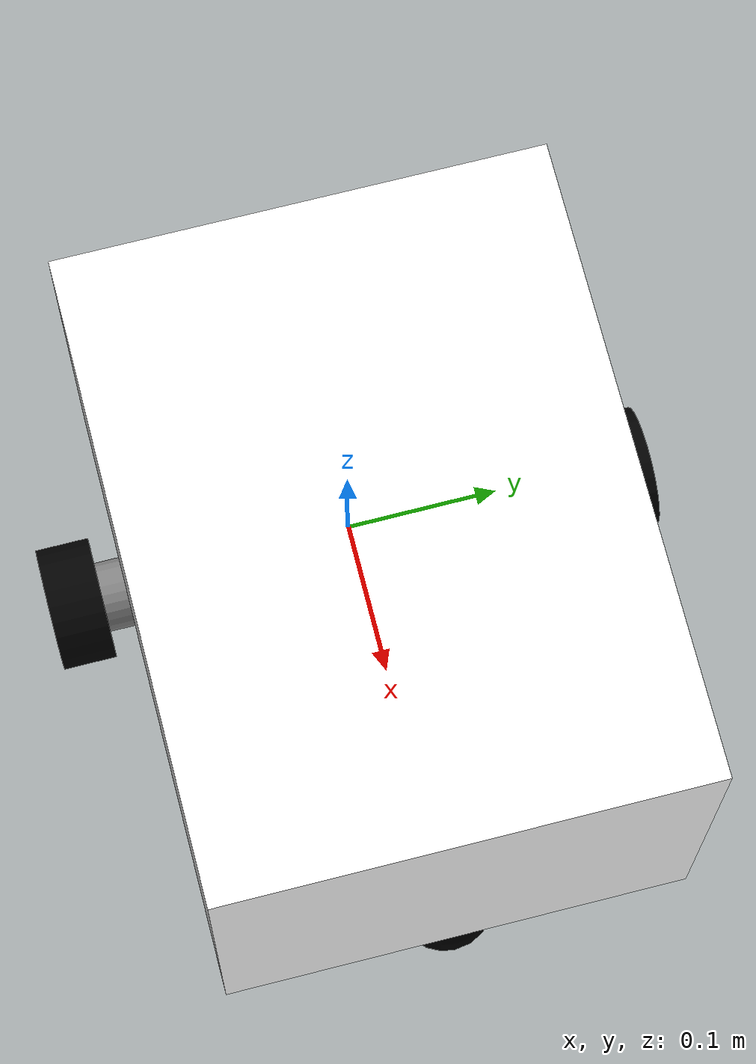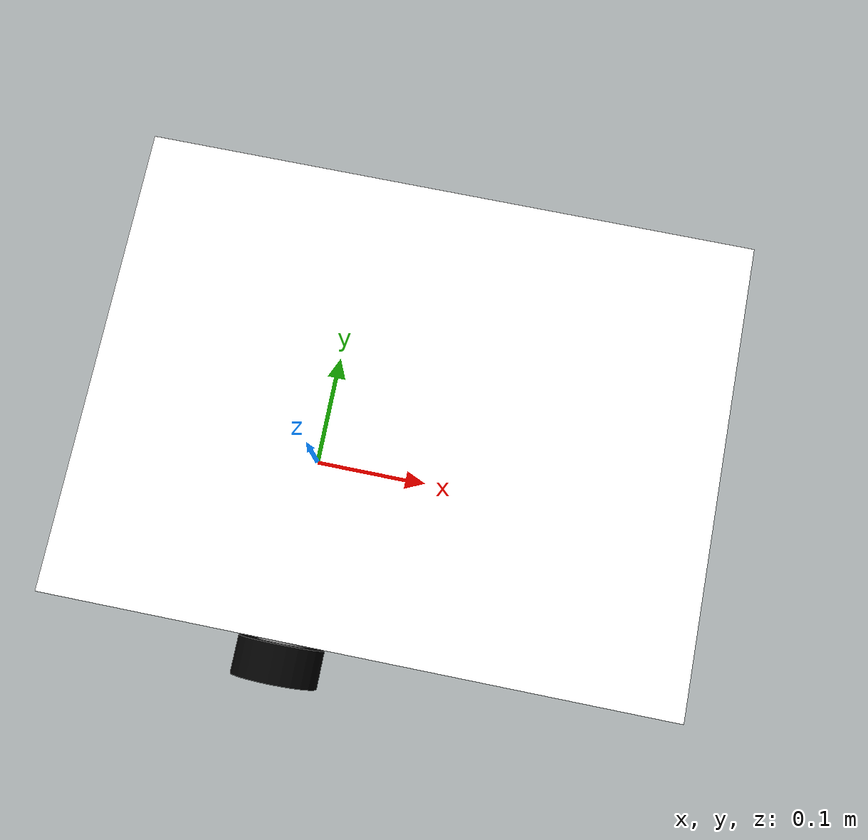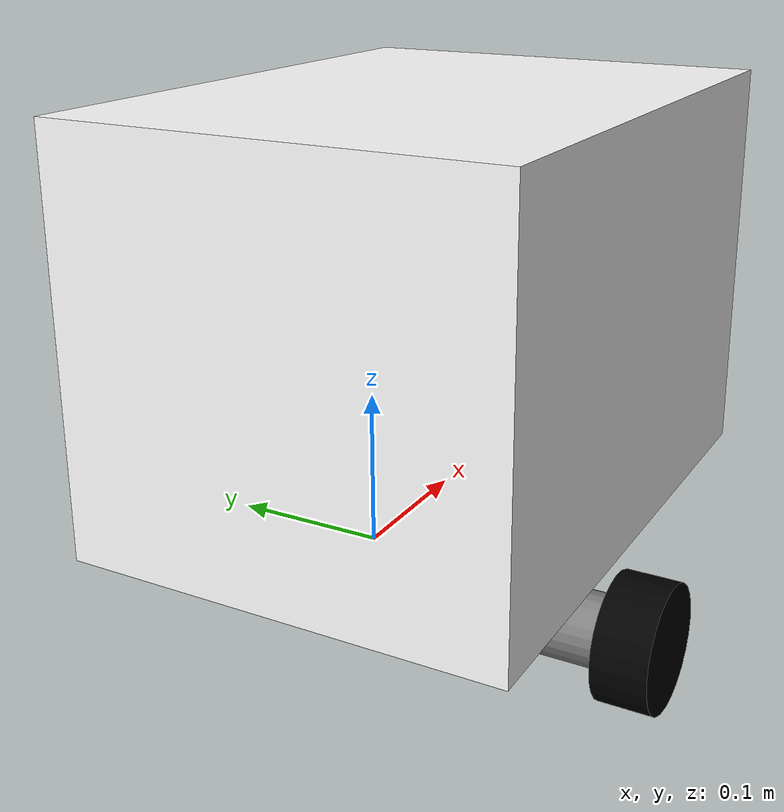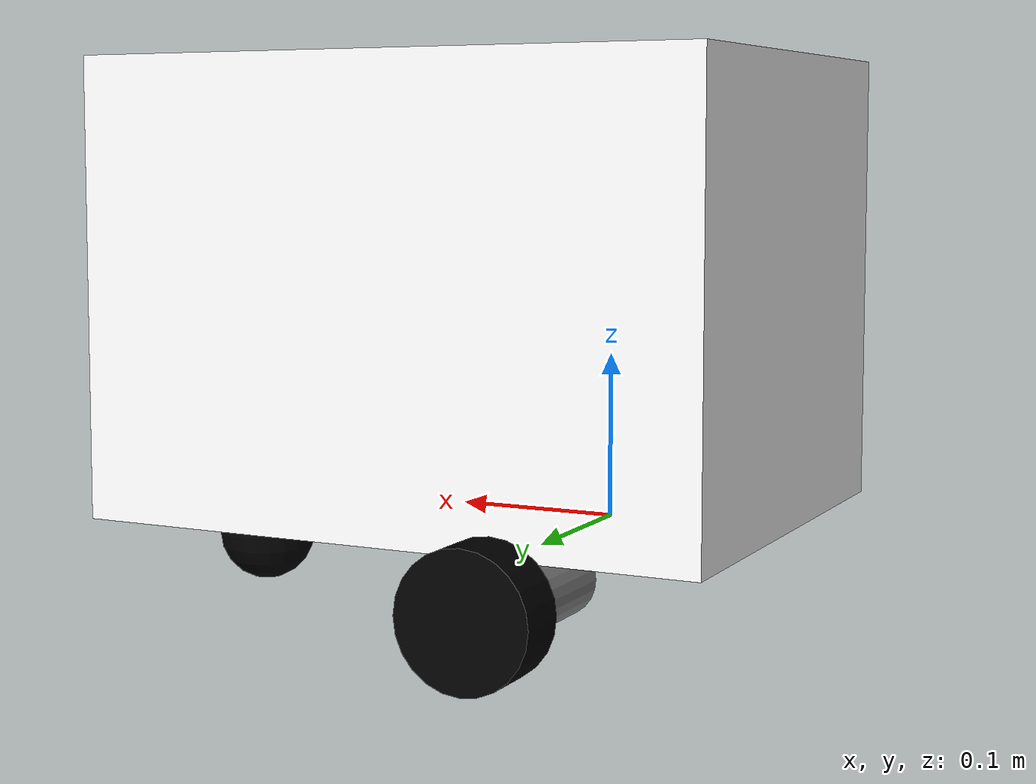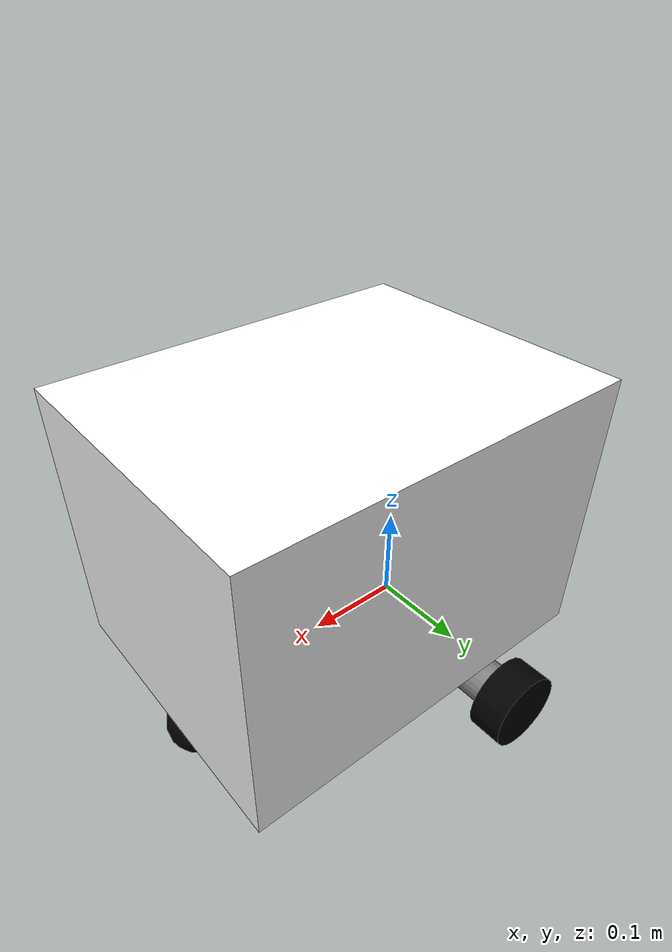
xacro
<?xml version="1.0"?>
<robot xmlns:xacro="http://www.ros.org/wiki/xacro" name="robot">

    <!-- ================= MATERIALS ================= -->
    <material name="white"><color rgba="1 1 1 1"/></material>
    <material name="black"><color rgba="0 0 0 1"/></material>
    <material name="grey"><color rgba="0.5 0.5 0.5 1"/></material>
    <material name="red"><color rgba="1 0 0 1"/></material>

    <!-- ================= PROPERTIES ================= -->
    <xacro:property name="box_length" value="0.394"/>
    <xacro:property name="box_width"  value="0.300"/>
    <xacro:property name="box_height" value="0.280"/>

    <!-- ================= BASE LINK ================= -->
    <link name="base_link">
        <inertial>
            <origin xyz="0 0 0"/>
            <mass value="0.5"/>
            <inertia ixx="0.002" iyy="0.002" izz="0.002"
                     ixy="0" ixz="0" iyz="0"/>
        </inertial>
    </link>

    <!-- ================= BASE FOOTPRINT ================= -->
    <joint name="base_footprint_joint" type="fixed">
        <parent link="base_link"/>
        <child link="base_footprint"/>
        <origin xyz="0 0 0" rpy="0 0 0"/>
    </joint>

    <link name="base_footprint">
    </link>

    <!-- ================= CHASSIS ================= -->
    <joint name="chassis_joint" type="fixed">
        <origin xyz="-0.115 0 0"/>
        <parent link="base_link"/>
        <child link="chassis_link"/>
    </joint>

    <link name="chassis_link">
        <visual>
            <origin xyz="${box_length/2} 0 ${box_height/2}"/>
            <geometry>
                <box size="${box_length} ${box_width} ${box_height}"/>
            </geometry>
            <material name="white"/>
        </visual>
        <collision>
            <origin xyz="${box_length/2} 0 ${box_height/2}"/>
            <geometry>
                <box size="${box_length} ${box_width} ${box_height}"/>
            </geometry>
        </collision>
        <inertial>
            <origin xyz="${box_length/2} 0 ${box_height/2}"/>
            <mass value="8.0"/>
            <inertia
                ixx="${(1/12.0)*8*(box_width*box_width + box_height*box_height)}"
                iyy="${(1/12.0)*8*(box_length*box_length + box_height*box_height)}"
                izz="${(1/12.0)*8*(box_length*box_length + box_width*box_width)}"
                ixy="0" ixz="0" iyz="0"/>
        </inertial>
    </link>
    <gazebo reference="chassis_link">
        <material>Gazebo/White</material>
        <mu1>1.0</mu1>
        <mu2>1.0</mu2>
    </gazebo>

    <!-- ================= LEFT MOTOR ================= -->
    <joint name="left_motor_joint" type="fixed">
        <origin xyz="0 0.102 0"/>
        <parent link="base_link"/>
        <child link="left_motor_link"/>
    </joint>

    <link name="left_motor_link">
        <visual>
            <origin xyz="0 0.036 -0.023" rpy="${pi/2} 0 0"/>
            <geometry>
                <cylinder radius="0.023" length="0.126"/>
            </geometry>
            <material name="grey"/>
        </visual>
        <collision>
            <origin xyz="0 0.036 -0.023" rpy="${pi/2} 0 0"/>
            <geometry>
                <cylinder radius="0.023" length="0.126"/>
            </geometry>
        </collision>
        <inertial>
            <origin xyz="0 0.036 -0.023"/>
            <mass value="0.6"/>
            <inertia
                ixx="0.0009" iyy="0.0004" izz="0.0009"
                ixy="0" ixz="0" iyz="0"/>
        </inertial>
    </link>
    <gazebo reference="left_motor_link">
        <material>Gazebo/Grey</material>
    </gazebo>

    <!-- ================= LEFT WHEEL ================= -->
    <joint name="left_wheel_joint" type="continuous">
        <origin xyz="0 0.082 -0.023" rpy="-${pi/2} 0 0"/>
        <parent link="left_motor_link"/>
        <child link="left_wheel_link"/>
        <axis xyz="0 0 1"/>
        <limit effort="100" velocity="10.0"/>
        <dynamics damping="0.1" friction="0.1"/>
    </joint>

    <link name="left_wheel_link">
        <visual>
            <geometry>
                <cylinder radius="0.04" length="0.035"/>
            </geometry>
            <material name="black"/>
        </visual>
        <collision>
            <geometry>
                <sphere radius="0.04" />
            </geometry>
        </collision>
        <inertial>
            <mass value="0.4"/>
            <inertia
                ixx="0.00016" iyy="0.00032" izz="0.00016"
                ixy="0" ixz="0" iyz="0"/>
        </inertial>
    </link>
    <gazebo reference="left_wheel_link">
        <material>Gazebo/Black</material>
            <mu1>1.0</mu1>
        <mu2>1.0</mu2>
    </gazebo>

    <!-- ================= RIGHT MOTOR ================= -->
    <joint name="right_motor_joint" type="fixed">
        <origin xyz="0 -0.102 0"/>
        <parent link="base_link"/>
        <child link="right_motor_link"/>
    </joint>

    <link name="right_motor_link">
        <visual>
            <origin xyz="0 -0.036 -0.023" rpy="-${pi/2} 0 0"/>
            <geometry>
                <cylinder radius="0.023" length="0.126"/>
            </geometry>
            <material name="grey"/>
        </visual>
        <collision>
            <origin xyz="0 -0.036 -0.023" rpy="-${pi/2} 0 0"/>
            <geometry>
                <cylinder radius="0.023" length="0.126"/>
            </geometry>
        </collision>
        <inertial>
            <origin xyz="0 -0.036 -0.023"/>
            <mass value="0.6"/>
            <inertia
                ixx="0.0009" iyy="0.0004" izz="0.0009"
                ixy="0" ixz="0" iyz="0"/>
        </inertial>
    </link>
    <gazebo reference="right_motor_link">
        <material>Gazebo/Grey</material>
    </gazebo>

    <!-- ================= RIGHT WHEEL ================= -->
    <joint name="right_wheel_joint" type="continuous">
        <origin xyz="0 -0.082 -0.023" rpy="-${pi/2} 0 0"/>
        <parent link="right_motor_link"/>
        <child link="right_wheel_link"/>
        <axis xyz="0 0 1"/>
        <limit effort="100" velocity="10.0"/>
        <dynamics damping="0.1" friction="0.1"/>
    </joint>

    <link name="right_wheel_link">
        <visual>
            <geometry>
                <cylinder radius="0.04" length="0.035"/>
            </geometry>
            <material name="black"/>
        </visual>
        <collision>
            <geometry>
                <sphere radius="0.04" />
            </geometry>
        </collision>
        <inertial>
            <mass value="0.4"/>
            <inertia
                ixx="0.00016" iyy="0.00032" izz="0.00016"
                ixy="0" ixz="0" iyz="0"/>
        </inertial>
    </link>
    <gazebo reference="right_wheel_link">
        <material>Gazebo/Black</material>
        <mu1>1.0</mu1>
        <mu2>1.0</mu2>
    </gazebo>

    <!-- ================= CASTER ================= -->
    <joint name="caster_wheel_joint" type="fixed">
        <origin xyz="0.250 0 -0.0315"/>
        <parent link="base_link"/>
        <child link="caster_wheel_link"/>
    </joint>

    <link name="caster_wheel_link">
        <visual>
            <geometry>
                <sphere radius="0.0315"/>
            </geometry>
            <material name="black"/>
        </visual>
        <collision>
            <geometry>
                <sphere radius="0.0315"/>
            </geometry>
        </collision>
        <inertial>
            <mass value="0.2"/>
            <inertia
                ixx="0.00008" iyy="0.00008" izz="0.00008"
                ixy="0" ixz="0" iyz="0"/>
        </inertial>
    </link>
    <gazebo reference="caster_wheel_link">
        <material>Gazebo/Black</material>
        <mu1>0.000001</mu1>
        <mu2>0.000001</mu2>
    </gazebo>

</robot>
